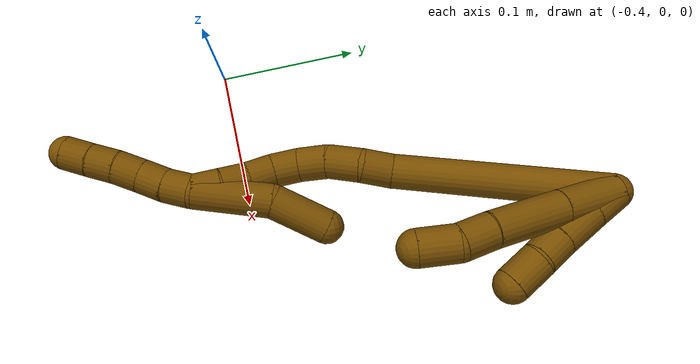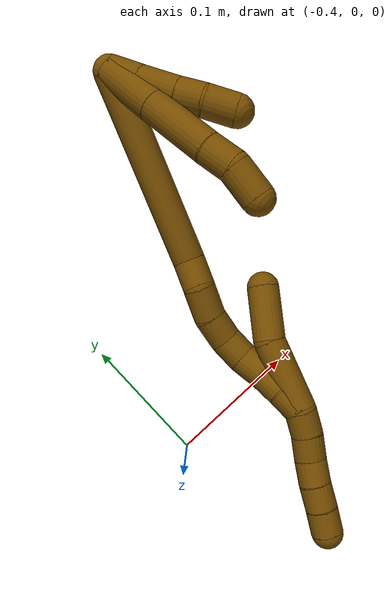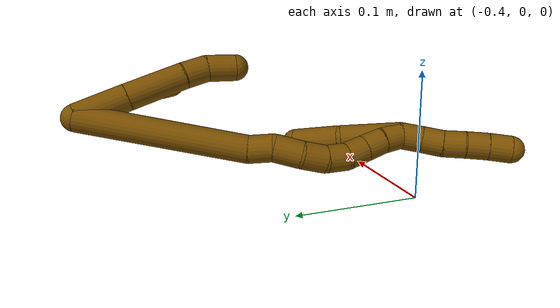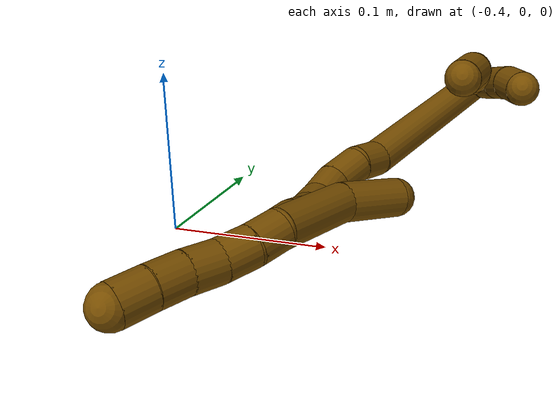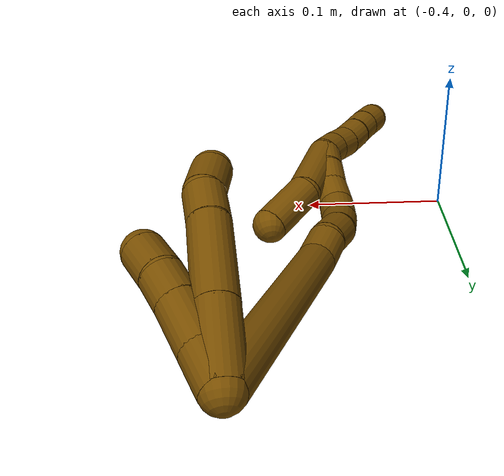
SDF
<sdf version="1.7">
 <world name="default">
  <model name="12">
   <static>0</static>
   <link name="12">
    <collision name="collision-cylinder-e_1_2_8">
     <pose>-0.001534 0.002074 -0.022785 -3.05082 -0.066956 1.27076</pose>
     <geometry><cylinder><radius>0.0125</radius><length>0.045862</length></cylinder></geometry>
     <surface>
      <friction><ode><mu>1.16</mu><mu2>1.16</mu2><slip1>0</slip1><slip2>0</slip2></ode></friction>
      <contact><ode><kp>1e+06</kp><kd>1</kd><max_vel>0</max_vel><min_depth>0.001</min_depth></ode></contact>
     </surface>
    </collision>
    <visual name="visual-cylinder-e_1_2_8">
     <pose>-0.001534 0.002074 -0.022785 -3.05082 -0.066956 1.27076</pose>
     <geometry><cylinder><radius>0.0125</radius><length>0.045862</length></cylinder></geometry>
     <material><ambient>0.466667 0.301961 0 1</ambient></material>
    </visual>
    <collision name="collision-cylinder-e_2_8_9">
     <pose>-0.004913 0.007087 -0.072365 -3.03234 -0.068311 1.117</pose>
     <geometry><cylinder><radius>0.0125</radius><length>0.054036</length></cylinder></geometry>
     <surface>
      <friction><ode><mu>1.16</mu><mu2>1.16</mu2><slip1>0</slip1><slip2>0</slip2></ode></friction>
      <contact><ode><kp>1e+06</kp><kd>1</kd><max_vel>0</max_vel><min_depth>0.001</min_depth></ode></contact>
     </surface>
    </collision>
    <visual name="visual-cylinder-e_2_8_9">
     <pose>-0.004913 0.007087 -0.072365 -3.03234 -0.068311 1.117</pose>
     <geometry><cylinder><radius>0.0125</radius><length>0.054036</length></cylinder></geometry>
     <material><ambient>0.466667 0.301961 0 1</ambient></material>
    </visual>
    <collision name="collision-cylinder-e_3_9_10">
     <pose>-0.007419 0.012306 -0.110476 -2.94283 -0.057277 0.559531</pose>
     <geometry><cylinder><radius>0.0125</radius><length>0.023124</length></cylinder></geometry>
     <surface>
      <friction><ode><mu>1.16</mu><mu2>1.16</mu2><slip1>0</slip1><slip2>0</slip2></ode></friction>
      <contact><ode><kp>1e+06</kp><kd>1</kd><max_vel>0</max_vel><min_depth>0.001</min_depth></ode></contact>
     </surface>
    </collision>
    <visual name="visual-cylinder-e_3_9_10">
     <pose>-0.007419 0.012306 -0.110476 -2.94283 -0.057277 0.559531</pose>
     <geometry><cylinder><radius>0.0125</radius><length>0.023124</length></cylinder></geometry>
     <material><ambient>0.466667 0.301961 0 1</ambient></material>
    </visual>
    <collision name="collision-cylinder-e_4_10_6">
     <pose>-0.013344 0.017721 -0.133809 -2.88634 -0.400824 2.01478</pose>
     <geometry><cylinder><radius>0.0125</radius><length>0.026977</length></cylinder></geometry>
     <surface>
      <friction><ode><mu>1.16</mu><mu2>1.16</mu2><slip1>0</slip1><slip2>0</slip2></ode></friction>
      <contact><ode><kp>1e+06</kp><kd>1</kd><max_vel>0</max_vel><min_depth>0.001</min_depth></ode></contact>
     </surface>
    </collision>
    <visual name="visual-cylinder-e_4_10_6">
     <pose>-0.013344 0.017721 -0.133809 -2.88634 -0.400824 2.01478</pose>
     <geometry><cylinder><radius>0.0125</radius><length>0.026977</length></cylinder></geometry>
     <material><ambient>0.466667 0.301961 0 1</ambient></material>
    </visual>
    <collision name="collision-cylinder-e_1_2_11">
     <pose>0.001952 0.004387 -0.011395 -2.77408 0.158537 -0.807817</pose>
     <geometry><cylinder><radius>0.0125</radius><length>0.024732</length></cylinder></geometry>
     <surface>
      <friction><ode><mu>1.16</mu><mu2>1.16</mu2><slip1>0</slip1><slip2>0</slip2></ode></friction>
      <contact><ode><kp>1e+06</kp><kd>1</kd><max_vel>0</max_vel><min_depth>0.001</min_depth></ode></contact>
     </surface>
    </collision>
    <visual name="visual-cylinder-e_1_2_11">
     <pose>0.001952 0.004387 -0.011395 -2.77408 0.158537 -0.807817</pose>
     <geometry><cylinder><radius>0.0125</radius><length>0.024732</length></cylinder></geometry>
     <material><ambient>0.466667 0.301961 0 1</ambient></material>
    </visual>
    <collision name="collision-cylinder-e_2_11_12">
     <pose>0.006784 0.013803 -0.037109 -2.80385 0.1875 -1.00797</pose>
     <geometry><cylinder><radius>0.0125</radius><length>0.030892</length></cylinder></geometry>
     <surface>
      <friction><ode><mu>1.16</mu><mu2>1.16</mu2><slip1>0</slip1><slip2>0</slip2></ode></friction>
      <contact><ode><kp>1e+06</kp><kd>1</kd><max_vel>0</max_vel><min_depth>0.001</min_depth></ode></contact>
     </surface>
    </collision>
    <visual name="visual-cylinder-e_2_11_12">
     <pose>0.006784 0.013803 -0.037109 -2.80385 0.1875 -1.00797</pose>
     <geometry><cylinder><radius>0.0125</radius><length>0.030892</length></cylinder></geometry>
     <material><ambient>0.466667 0.301961 0 1</ambient></material>
    </visual>
    <collision name="collision-cylinder-e_3_12_13">
     <pose>0.012007 0.022406 -0.06072 -2.77437 0.231207 -1.11764</pose>
     <geometry><cylinder><radius>0.0125</radius><length>0.020457</length></cylinder></geometry>
     <surface>
      <friction><ode><mu>1.16</mu><mu2>1.16</mu2><slip1>0</slip1><slip2>0</slip2></ode></friction>
      <contact><ode><kp>1e+06</kp><kd>1</kd><max_vel>0</max_vel><min_depth>0.001</min_depth></ode></contact>
     </surface>
    </collision>
    <visual name="visual-cylinder-e_3_12_13">
     <pose>0.012007 0.022406 -0.06072 -2.77437 0.231207 -1.11764</pose>
     <geometry><cylinder><radius>0.0125</radius><length>0.020457</length></cylinder></geometry>
     <material><ambient>0.466667 0.301961 0 1</ambient></material>
    </visual>
    <collision name="collision-cylinder-e_4_13_5">
     <pose>0.016042 0.032039 -0.080184 -2.6044 0.141897 -0.50535</pose>
     <geometry><cylinder><radius>0.0125</radius><length>0.023918</length></cylinder></geometry>
     <surface>
      <friction><ode><mu>1.16</mu><mu2>1.16</mu2><slip1>0</slip1><slip2>0</slip2></ode></friction>
      <contact><ode><kp>1e+06</kp><kd>1</kd><max_vel>0</max_vel><min_depth>0.001</min_depth></ode></contact>
     </surface>
    </collision>
    <visual name="visual-cylinder-e_4_13_5">
     <pose>0.016042 0.032039 -0.080184 -2.6044 0.141897 -0.50535</pose>
     <geometry><cylinder><radius>0.0125</radius><length>0.023918</length></cylinder></geometry>
     <material><ambient>0.466667 0.301961 0 1</ambient></material>
    </visual>
    <collision name="collision-cylinder-e_1_2_14">
     <pose>-0.049113 0.016055 -0.054666 -2.85593 -0.711422 2.40294</pose>
     <geometry><cylinder><radius>0.0125</radius><length>0.150443</length></cylinder></geometry>
     <surface>
      <friction><ode><mu>1.16</mu><mu2>1.16</mu2><slip1>0</slip1><slip2>0</slip2></ode></friction>
      <contact><ode><kp>1e+06</kp><kd>1</kd><max_vel>0</max_vel><min_depth>0.001</min_depth></ode></contact>
     </surface>
    </collision>
    <visual name="visual-cylinder-e_1_2_14">
     <pose>-0.049113 0.016055 -0.054666 -2.85593 -0.711422 2.40294</pose>
     <geometry><cylinder><radius>0.0125</radius><length>0.150443</length></cylinder></geometry>
     <material><ambient>0.466667 0.301961 0 1</ambient></material>
    </visual>
    <collision name="collision-cylinder-e_2_14_15">
     <pose>-0.104347 0.032 -0.118563 3.12968 -0.585519 -3.10206</pose>
     <geometry><cylinder><radius>0.0125</radius><length>0.022152</length></cylinder></geometry>
     <surface>
      <friction><ode><mu>1.16</mu><mu2>1.16</mu2><slip1>0</slip1><slip2>0</slip2></ode></friction>
      <contact><ode><kp>1e+06</kp><kd>1</kd><max_vel>0</max_vel><min_depth>0.001</min_depth></ode></contact>
     </surface>
    </collision>
    <visual name="visual-cylinder-e_2_14_15">
     <pose>-0.104347 0.032 -0.118563 3.12968 -0.585519 -3.10206</pose>
     <geometry><cylinder><radius>0.0125</radius><length>0.022152</length></cylinder></geometry>
     <material><ambient>0.466667 0.301961 0 1</ambient></material>
    </visual>
    <collision name="collision-cylinder-e_3_15_16">
     <pose>-0.119359 0.034775 -0.136365 -2.81696 -0.776882 2.38032</pose>
     <geometry><cylinder><radius>0.0125</radius><length>0.025365</length></cylinder></geometry>
     <surface>
      <friction><ode><mu>1.16</mu><mu2>1.16</mu2><slip1>0</slip1><slip2>0</slip2></ode></friction>
      <contact><ode><kp>1e+06</kp><kd>1</kd><max_vel>0</max_vel><min_depth>0.001</min_depth></ode></contact>
     </surface>
    </collision>
    <visual name="visual-cylinder-e_3_15_16">
     <pose>-0.119359 0.034775 -0.136365 -2.81696 -0.776882 2.38032</pose>
     <geometry><cylinder><radius>0.0125</radius><length>0.025365</length></cylinder></geometry>
     <material><ambient>0.466667 0.301961 0 1</ambient></material>
    </visual>
    <collision name="collision-cylinder-e_4_16_17">
     <pose>-0.134137 0.041845 -0.153242 -2.67479 -0.564346 1.76792</pose>
     <geometry><cylinder><radius>0.0125</radius><length>0.022014</length></cylinder></geometry>
     <surface>
      <friction><ode><mu>1.16</mu><mu2>1.16</mu2><slip1>0</slip1><slip2>0</slip2></ode></friction>
      <contact><ode><kp>1e+06</kp><kd>1</kd><max_vel>0</max_vel><min_depth>0.001</min_depth></ode></contact>
     </surface>
    </collision>
    <visual name="visual-cylinder-e_4_16_17">
     <pose>-0.134137 0.041845 -0.153242 -2.67479 -0.564346 1.76792</pose>
     <geometry><cylinder><radius>0.0125</radius><length>0.022014</length></cylinder></geometry>
     <material><ambient>0.466667 0.301961 0 1</ambient></material>
    </visual>
    <collision name="collision-cylinder-e_5_17_18">
     <pose>-0.14301 0.04892 -0.17065 -2.83417 -0.302957 1.55592</pose>
     <geometry><cylinder><radius>0.0125</radius><length>0.020013</length></cylinder></geometry>
     <surface>
      <friction><ode><mu>1.16</mu><mu2>1.16</mu2><slip1>0</slip1><slip2>0</slip2></ode></friction>
      <contact><ode><kp>1e+06</kp><kd>1</kd><max_vel>0</max_vel><min_depth>0.001</min_depth></ode></contact>
     </surface>
    </collision>
    <visual name="visual-cylinder-e_5_17_18">
     <pose>-0.14301 0.04892 -0.17065 -2.83417 -0.302957 1.55592</pose>
     <geometry><cylinder><radius>0.0125</radius><length>0.020013</length></cylinder></geometry>
     <material><ambient>0.466667 0.301961 0 1</ambient></material>
    </visual>
    <collision name="collision-cylinder-e_6_18_19">
     <pose>-0.146566 0.053752 -0.189546 -2.94585 -0.057059 0.565725</pose>
     <geometry><cylinder><radius>0.0125</radius><length>0.02</length></cylinder></geometry>
     <surface>
      <friction><ode><mu>1.16</mu><mu2>1.16</mu2><slip1>0</slip1><slip2>0</slip2></ode></friction>
      <contact><ode><kp>1e+06</kp><kd>1</kd><max_vel>0</max_vel><min_depth>0.001</min_depth></ode></contact>
     </surface>
    </collision>
    <visual name="visual-cylinder-e_6_18_19">
     <pose>-0.146566 0.053752 -0.189546 -2.94585 -0.057059 0.565725</pose>
     <geometry><cylinder><radius>0.0125</radius><length>0.02</length></cylinder></geometry>
     <material><ambient>0.466667 0.301961 0 1</ambient></material>
    </visual>
    <collision name="collision-cylinder-e_7_19_20">
     <pose>-0.148143 0.056695 -0.209239 -3.0408 -0.100855 1.57143</pose>
     <geometry><cylinder><radius>0.0125</radius><length>0.020001</length></cylinder></geometry>
     <surface>
      <friction><ode><mu>1.16</mu><mu2>1.16</mu2><slip1>0</slip1><slip2>0</slip2></ode></friction>
      <contact><ode><kp>1e+06</kp><kd>1</kd><max_vel>0</max_vel><min_depth>0.001</min_depth></ode></contact>
     </surface>
    </collision>
    <visual name="visual-cylinder-e_7_19_20">
     <pose>-0.148143 0.056695 -0.209239 -3.0408 -0.100855 1.57143</pose>
     <geometry><cylinder><radius>0.0125</radius><length>0.020001</length></cylinder></geometry>
     <material><ambient>0.466667 0.301961 0 1</ambient></material>
    </visual>
    <collision name="collision-cylinder-e_8_20_1">
     <pose>-0.151201 0.059628 -0.228739 -2.94301 -0.206449 1.60991</pose>
     <geometry><cylinder><radius>0.0125</radius><length>0.020012</length></cylinder></geometry>
     <surface>
      <friction><ode><mu>1.16</mu><mu2>1.16</mu2><slip1>0</slip1><slip2>0</slip2></ode></friction>
      <contact><ode><kp>1e+06</kp><kd>1</kd><max_vel>0</max_vel><min_depth>0.001</min_depth></ode></contact>
     </surface>
    </collision>
    <visual name="visual-cylinder-e_8_20_1">
     <pose>-0.151201 0.059628 -0.228739 -2.94301 -0.206449 1.60991</pose>
     <geometry><cylinder><radius>0.0125</radius><length>0.020012</length></cylinder></geometry>
     <material><ambient>0.466667 0.301961 0 1</ambient></material>
    </visual>
    <collision name="collision-cylinder-e_1_1_21">
     <pose>-0.138166 0.060211 -0.214115 0.055631 0.556277 0.015889</pose>
     <geometry><cylinder><radius>0.0125</radius><length>0.05714</length></cylinder></geometry>
     <surface>
      <friction><ode><mu>1.16</mu><mu2>1.16</mu2><slip1>0</slip1><slip2>0</slip2></ode></friction>
      <contact><ode><kp>1e+06</kp><kd>1</kd><max_vel>0</max_vel><min_depth>0.001</min_depth></ode></contact>
     </surface>
    </collision>
    <visual name="visual-cylinder-e_1_1_21">
     <pose>-0.138166 0.060211 -0.214115 0.055631 0.556277 0.015889</pose>
     <geometry><cylinder><radius>0.0125</radius><length>0.05714</length></cylinder></geometry>
     <material><ambient>0.466667 0.301961 0 1</ambient></material>
    </visual>
    <collision name="collision-cylinder-e_2_21_4">
     <pose>-0.109264 0.063898 -0.174302 -0.312456 0.700677 -0.114986</pose>
     <geometry><cylinder><radius>0.0125</radius><length>0.04286</length></cylinder></geometry>
     <surface>
      <friction><ode><mu>1.16</mu><mu2>1.16</mu2><slip1>0</slip1><slip2>0</slip2></ode></friction>
      <contact><ode><kp>1e+06</kp><kd>1</kd><max_vel>0</max_vel><min_depth>0.001</min_depth></ode></contact>
     </surface>
    </collision>
    <visual name="visual-cylinder-e_2_21_4">
     <pose>-0.109264 0.063898 -0.174302 -0.312456 0.700677 -0.114986</pose>
     <geometry><cylinder><radius>0.0125</radius><length>0.04286</length></cylinder></geometry>
     <material><ambient>0.466667 0.301961 0 1</ambient></material>
    </visual>
    <collision name="collision-cylinder-e_1_1_22">
     <pose>-0.16037 0.062775 -0.245258 -2.96779 -0.792092 2.73077</pose>
     <geometry><cylinder><radius>0.0125</radius><length>0.02</length></cylinder></geometry>
     <surface>
      <friction><ode><mu>1.16</mu><mu2>1.16</mu2><slip1>0</slip1><slip2>0</slip2></ode></friction>
      <contact><ode><kp>1e+06</kp><kd>1</kd><max_vel>0</max_vel><min_depth>0.001</min_depth></ode></contact>
     </surface>
    </collision>
    <visual name="visual-cylinder-e_1_1_22">
     <pose>-0.16037 0.062775 -0.245258 -2.96779 -0.792092 2.73077</pose>
     <geometry><cylinder><radius>0.0125</radius><length>0.02</length></cylinder></geometry>
     <material><ambient>0.466667 0.301961 0 1</ambient></material>
    </visual>
    <collision name="collision-cylinder-e_2_22_23">
     <pose>-0.175219 0.064224 -0.258514 -3.10466 -0.883738 3.06356</pose>
     <geometry><cylinder><radius>0.0125</radius><length>0.02</length></cylinder></geometry>
     <surface>
      <friction><ode><mu>1.16</mu><mu2>1.16</mu2><slip1>0</slip1><slip2>0</slip2></ode></friction>
      <contact><ode><kp>1e+06</kp><kd>1</kd><max_vel>0</max_vel><min_depth>0.001</min_depth></ode></contact>
     </surface>
    </collision>
    <visual name="visual-cylinder-e_2_22_23">
     <pose>-0.175219 0.064224 -0.258514 -3.10466 -0.883738 3.06356</pose>
     <geometry><cylinder><radius>0.0125</radius><length>0.02</length></cylinder></geometry>
     <material><ambient>0.466667 0.301961 0 1</ambient></material>
    </visual>
    <collision name="collision-cylinder-e_3_23_24">
     <pose>-0.18987 0.063747 -0.272037 3.04291 -0.764122 -2.89703</pose>
     <geometry><cylinder><radius>0.0125</radius><length>0.02</length></cylinder></geometry>
     <surface>
      <friction><ode><mu>1.16</mu><mu2>1.16</mu2><slip1>0</slip1><slip2>0</slip2></ode></friction>
      <contact><ode><kp>1e+06</kp><kd>1</kd><max_vel>0</max_vel><min_depth>0.001</min_depth></ode></contact>
     </surface>
    </collision>
    <visual name="visual-cylinder-e_3_23_24">
     <pose>-0.18987 0.063747 -0.272037 3.04291 -0.764122 -2.89703</pose>
     <geometry><cylinder><radius>0.0125</radius><length>0.02</length></cylinder></geometry>
     <material><ambient>0.466667 0.301961 0 1</ambient></material>
    </visual>
    <collision name="collision-cylinder-e_4_24_25">
     <pose>-0.203491 0.06321 -0.286641 -3.11807 -0.734518 3.08047</pose>
     <geometry><cylinder><radius>0.0125</radius><length>0.02</length></cylinder></geometry>
     <surface>
      <friction><ode><mu>1.16</mu><mu2>1.16</mu2><slip1>0</slip1><slip2>0</slip2></ode></friction>
      <contact><ode><kp>1e+06</kp><kd>1</kd><max_vel>0</max_vel><min_depth>0.001</min_depth></ode></contact>
     </surface>
    </collision>
    <visual name="visual-cylinder-e_4_24_25">
     <pose>-0.203491 0.06321 -0.286641 -3.11807 -0.734518 3.08047</pose>
     <geometry><cylinder><radius>0.0125</radius><length>0.02</length></cylinder></geometry>
     <material><ambient>0.466667 0.301961 0 1</ambient></material>
    </visual>
    <collision name="collision-cylinder-e_5_25_3">
     <pose>-0.217276 0.063778 -0.301109 -3.08581 -0.78708 3.00741</pose>
     <geometry><cylinder><radius>0.0125</radius><length>0.02</length></cylinder></geometry>
     <surface>
      <friction><ode><mu>1.16</mu><mu2>1.16</mu2><slip1>0</slip1><slip2>0</slip2></ode></friction>
      <contact><ode><kp>1e+06</kp><kd>1</kd><max_vel>0</max_vel><min_depth>0.001</min_depth></ode></contact>
     </surface>
    </collision>
    <visual name="visual-cylinder-e_5_25_3">
     <pose>-0.217276 0.063778 -0.301109 -3.08581 -0.78708 3.00741</pose>
     <geometry><cylinder><radius>0.0125</radius><length>0.02</length></cylinder></geometry>
     <material><ambient>0.466667 0.301961 0 1</ambient></material>
    </visual>
    <collision name="collision-sphere-3">
     <pose>-0.224359 0.064172 -0.308157 0 -0 0</pose>
     <geometry><sphere><radius>0.0125</radius></sphere></geometry>
     <surface>
      <friction><ode><mu>1.16</mu><mu2>1.16</mu2><slip1>0</slip1><slip2>0</slip2></ode></friction>
      <contact><ode><kp>1e+06</kp><kd>1</kd><max_vel>0</max_vel><min_depth>0.001</min_depth></ode></contact>
     </surface>
    </collision>
    <visual name="visual-sphere-3">
     <pose>-0.224359 0.064172 -0.308157 0 -0 0</pose>
     <geometry><sphere><radius>0.0125</radius></sphere></geometry>
     <material><ambient>0.466667 0.301961 0 1</ambient></material>
    </visual>
    <collision name="collision-sphere-25">
     <pose>-0.210193 0.063384 -0.294061 0 -0 0</pose>
     <geometry><sphere><radius>0.0125</radius></sphere></geometry>
     <surface>
      <friction><ode><mu>1.16</mu><mu2>1.16</mu2><slip1>0</slip1><slip2>0</slip2></ode></friction>
      <contact><ode><kp>1e+06</kp><kd>1</kd><max_vel>0</max_vel><min_depth>0.001</min_depth></ode></contact>
     </surface>
    </collision>
    <visual name="visual-sphere-25">
     <pose>-0.210193 0.063384 -0.294061 0 -0 0</pose>
     <geometry><sphere><radius>0.0125</radius></sphere></geometry>
     <material><ambient>0.466667 0.301961 0 1</ambient></material>
    </visual>
    <collision name="collision-sphere-24">
     <pose>-0.196789 0.063035 -0.279222 0 -0 0</pose>
     <geometry><sphere><radius>0.0125</radius></sphere></geometry>
     <surface>
      <friction><ode><mu>1.16</mu><mu2>1.16</mu2><slip1>0</slip1><slip2>0</slip2></ode></friction>
      <contact><ode><kp>1e+06</kp><kd>1</kd><max_vel>0</max_vel><min_depth>0.001</min_depth></ode></contact>
     </surface>
    </collision>
    <visual name="visual-sphere-24">
     <pose>-0.196789 0.063035 -0.279222 0 -0 0</pose>
     <geometry><sphere><radius>0.0125</radius></sphere></geometry>
     <material><ambient>0.466667 0.301961 0 1</ambient></material>
    </visual>
    <collision name="collision-sphere-23">
     <pose>-0.182951 0.064458 -0.264852 0 -0 0</pose>
     <geometry><sphere><radius>0.0125</radius></sphere></geometry>
     <surface>
      <friction><ode><mu>1.16</mu><mu2>1.16</mu2><slip1>0</slip1><slip2>0</slip2></ode></friction>
      <contact><ode><kp>1e+06</kp><kd>1</kd><max_vel>0</max_vel><min_depth>0.001</min_depth></ode></contact>
     </surface>
    </collision>
    <visual name="visual-sphere-23">
     <pose>-0.182951 0.064458 -0.264852 0 -0 0</pose>
     <geometry><sphere><radius>0.0125</radius></sphere></geometry>
     <material><ambient>0.466667 0.301961 0 1</ambient></material>
    </visual>
    <collision name="collision-sphere-22">
     <pose>-0.167488 0.06399 -0.252176 0 -0 0</pose>
     <geometry><sphere><radius>0.0125</radius></sphere></geometry>
     <surface>
      <friction><ode><mu>1.16</mu><mu2>1.16</mu2><slip1>0</slip1><slip2>0</slip2></ode></friction>
      <contact><ode><kp>1e+06</kp><kd>1</kd><max_vel>0</max_vel><min_depth>0.001</min_depth></ode></contact>
     </surface>
    </collision>
    <visual name="visual-sphere-22">
     <pose>-0.167488 0.06399 -0.252176 0 -0 0</pose>
     <geometry><sphere><radius>0.0125</radius></sphere></geometry>
     <material><ambient>0.466667 0.301961 0 1</ambient></material>
    </visual>
    <collision name="collision-sphere-4">
     <pose>-0.095447 0.068933 -0.158714 0 -0 0</pose>
     <geometry><sphere><radius>0.0125</radius></sphere></geometry>
     <surface>
      <friction><ode><mu>1.16</mu><mu2>1.16</mu2><slip1>0</slip1><slip2>0</slip2></ode></friction>
      <contact><ode><kp>1e+06</kp><kd>1</kd><max_vel>0</max_vel><min_depth>0.001</min_depth></ode></contact>
     </surface>
    </collision>
    <visual name="visual-sphere-4">
     <pose>-0.095447 0.068933 -0.158714 0 -0 0</pose>
     <geometry><sphere><radius>0.0125</radius></sphere></geometry>
     <material><ambient>0.466667 0.301961 0 1</ambient></material>
    </visual>
    <collision name="collision-sphere-21">
     <pose>-0.12308 0.058862 -0.18989 0 -0 0</pose>
     <geometry><sphere><radius>0.0125</radius></sphere></geometry>
     <surface>
      <friction><ode><mu>1.16</mu><mu2>1.16</mu2><slip1>0</slip1><slip2>0</slip2></ode></friction>
      <contact><ode><kp>1e+06</kp><kd>1</kd><max_vel>0</max_vel><min_depth>0.001</min_depth></ode></contact>
     </surface>
    </collision>
    <visual name="visual-sphere-21">
     <pose>-0.12308 0.058862 -0.18989 0 -0 0</pose>
     <geometry><sphere><radius>0.0125</radius></sphere></geometry>
     <material><ambient>0.466667 0.301961 0 1</ambient></material>
    </visual>
    <collision name="collision-sphere-1">
     <pose>-0.153252 0.06156 -0.23834 0 -0 0</pose>
     <geometry><sphere><radius>0.0125</radius></sphere></geometry>
     <surface>
      <friction><ode><mu>1.16</mu><mu2>1.16</mu2><slip1>0</slip1><slip2>0</slip2></ode></friction>
      <contact><ode><kp>1e+06</kp><kd>1</kd><max_vel>0</max_vel><min_depth>0.001</min_depth></ode></contact>
     </surface>
    </collision>
    <visual name="visual-sphere-1">
     <pose>-0.153252 0.06156 -0.23834 0 -0 0</pose>
     <geometry><sphere><radius>0.0125</radius></sphere></geometry>
     <material><ambient>0.466667 0.301961 0 1</ambient></material>
    </visual>
    <collision name="collision-sphere-11">
     <pose>0.003905 0.008775 -0.022791 0 -0 0</pose>
     <geometry><sphere><radius>0.0125</radius></sphere></geometry>
     <surface>
      <friction><ode><mu>1.16</mu><mu2>1.16</mu2><slip1>0</slip1><slip2>0</slip2></ode></friction>
      <contact><ode><kp>1e+06</kp><kd>1</kd><max_vel>0</max_vel><min_depth>0.001</min_depth></ode></contact>
     </surface>
    </collision>
    <visual name="visual-sphere-11">
     <pose>0.003905 0.008775 -0.022791 0 -0 0</pose>
     <geometry><sphere><radius>0.0125</radius></sphere></geometry>
     <material><ambient>0.466667 0.301961 0 1</ambient></material>
    </visual>
    <collision name="collision-sphere-6">
     <pose>-0.018607 0.020856 -0.145826 0 -0 0</pose>
     <geometry><sphere><radius>0.0125</radius></sphere></geometry>
     <surface>
      <friction><ode><mu>1.16</mu><mu2>1.16</mu2><slip1>0</slip1><slip2>0</slip2></ode></friction>
      <contact><ode><kp>1e+06</kp><kd>1</kd><max_vel>0</max_vel><min_depth>0.001</min_depth></ode></contact>
     </surface>
    </collision>
    <visual name="visual-sphere-6">
     <pose>-0.018607 0.020856 -0.145826 0 -0 0</pose>
     <geometry><sphere><radius>0.0125</radius></sphere></geometry>
     <material><ambient>0.466667 0.301961 0 1</ambient></material>
    </visual>
    <collision name="collision-sphere-10">
     <pose>-0.008081 0.014585 -0.121792 0 -0 0</pose>
     <geometry><sphere><radius>0.0125</radius></sphere></geometry>
     <surface>
      <friction><ode><mu>1.16</mu><mu2>1.16</mu2><slip1>0</slip1><slip2>0</slip2></ode></friction>
      <contact><ode><kp>1e+06</kp><kd>1</kd><max_vel>0</max_vel><min_depth>0.001</min_depth></ode></contact>
     </surface>
    </collision>
    <visual name="visual-sphere-10">
     <pose>-0.008081 0.014585 -0.121792 0 -0 0</pose>
     <geometry><sphere><radius>0.0125</radius></sphere></geometry>
     <material><ambient>0.466667 0.301961 0 1</ambient></material>
    </visual>
    <collision name="collision-sphere-9">
     <pose>-0.006757 0.010026 -0.09916 0 -0 0</pose>
     <geometry><sphere><radius>0.0125</radius></sphere></geometry>
     <surface>
      <friction><ode><mu>1.16</mu><mu2>1.16</mu2><slip1>0</slip1><slip2>0</slip2></ode></friction>
      <contact><ode><kp>1e+06</kp><kd>1</kd><max_vel>0</max_vel><min_depth>0.001</min_depth></ode></contact>
     </surface>
    </collision>
    <visual name="visual-sphere-9">
     <pose>-0.006757 0.010026 -0.09916 0 -0 0</pose>
     <geometry><sphere><radius>0.0125</radius></sphere></geometry>
     <material><ambient>0.466667 0.301961 0 1</ambient></material>
    </visual>
    <collision name="collision-sphere-2">
     <geometry><sphere><radius>0.0125</radius></sphere></geometry>
     <surface>
      <friction><ode><mu>1.16</mu><mu2>1.16</mu2><slip1>0</slip1><slip2>0</slip2></ode></friction>
      <contact><ode><kp>1e+06</kp><kd>1</kd><max_vel>0</max_vel><min_depth>0.001</min_depth></ode></contact>
     </surface>
    </collision>
    <visual name="visual-sphere-2">
     <geometry><sphere><radius>0.0125</radius></sphere></geometry>
     <material><ambient>0.466667 0.301961 0 1</ambient></material>
    </visual>
    <collision name="collision-sphere-19">
     <pose>-0.147136 0.055694 -0.19934 0 -0 0</pose>
     <geometry><sphere><radius>0.0125</radius></sphere></geometry>
     <surface>
      <friction><ode><mu>1.16</mu><mu2>1.16</mu2><slip1>0</slip1><slip2>0</slip2></ode></friction>
      <contact><ode><kp>1e+06</kp><kd>1</kd><max_vel>0</max_vel><min_depth>0.001</min_depth></ode></contact>
     </surface>
    </collision>
    <visual name="visual-sphere-19">
     <pose>-0.147136 0.055694 -0.19934 0 -0 0</pose>
     <geometry><sphere><radius>0.0125</radius></sphere></geometry>
     <material><ambient>0.466667 0.301961 0 1</ambient></material>
    </visual>
    <collision name="collision-sphere-8">
     <pose>-0.003068 0.004148 -0.045571 0 -0 0</pose>
     <geometry><sphere><radius>0.0125</radius></sphere></geometry>
     <surface>
      <friction><ode><mu>1.16</mu><mu2>1.16</mu2><slip1>0</slip1><slip2>0</slip2></ode></friction>
      <contact><ode><kp>1e+06</kp><kd>1</kd><max_vel>0</max_vel><min_depth>0.001</min_depth></ode></contact>
     </surface>
    </collision>
    <visual name="visual-sphere-8">
     <pose>-0.003068 0.004148 -0.045571 0 -0 0</pose>
     <geometry><sphere><radius>0.0125</radius></sphere></geometry>
     <material><ambient>0.466667 0.301961 0 1</ambient></material>
    </visual>
    <collision name="collision-sphere-12">
     <pose>0.009663 0.018832 -0.051427 0 -0 0</pose>
     <geometry><sphere><radius>0.0125</radius></sphere></geometry>
     <surface>
      <friction><ode><mu>1.16</mu><mu2>1.16</mu2><slip1>0</slip1><slip2>0</slip2></ode></friction>
      <contact><ode><kp>1e+06</kp><kd>1</kd><max_vel>0</max_vel><min_depth>0.001</min_depth></ode></contact>
     </surface>
    </collision>
    <visual name="visual-sphere-12">
     <pose>0.009663 0.018832 -0.051427 0 -0 0</pose>
     <geometry><sphere><radius>0.0125</radius></sphere></geometry>
     <material><ambient>0.466667 0.301961 0 1</ambient></material>
    </visual>
    <collision name="collision-sphere-13">
     <pose>0.014351 0.025981 -0.070013 0 -0 0</pose>
     <geometry><sphere><radius>0.0125</radius></sphere></geometry>
     <surface>
      <friction><ode><mu>1.16</mu><mu2>1.16</mu2><slip1>0</slip1><slip2>0</slip2></ode></friction>
      <contact><ode><kp>1e+06</kp><kd>1</kd><max_vel>0</max_vel><min_depth>0.001</min_depth></ode></contact>
     </surface>
    </collision>
    <visual name="visual-sphere-13">
     <pose>0.014351 0.025981 -0.070013 0 -0 0</pose>
     <geometry><sphere><radius>0.0125</radius></sphere></geometry>
     <material><ambient>0.466667 0.301961 0 1</ambient></material>
    </visual>
    <collision name="collision-sphere-5">
     <pose>0.017733 0.038098 -0.090355 0 -0 0</pose>
     <geometry><sphere><radius>0.0125</radius></sphere></geometry>
     <surface>
      <friction><ode><mu>1.16</mu><mu2>1.16</mu2><slip1>0</slip1><slip2>0</slip2></ode></friction>
      <contact><ode><kp>1e+06</kp><kd>1</kd><max_vel>0</max_vel><min_depth>0.001</min_depth></ode></contact>
     </surface>
    </collision>
    <visual name="visual-sphere-5">
     <pose>0.017733 0.038098 -0.090355 0 -0 0</pose>
     <geometry><sphere><radius>0.0125</radius></sphere></geometry>
     <material><ambient>0.466667 0.301961 0 1</ambient></material>
    </visual>
    <collision name="collision-sphere-14">
     <pose>-0.098226 0.03211 -0.109333 0 -0 0</pose>
     <geometry><sphere><radius>0.0125</radius></sphere></geometry>
     <surface>
      <friction><ode><mu>1.16</mu><mu2>1.16</mu2><slip1>0</slip1><slip2>0</slip2></ode></friction>
      <contact><ode><kp>1e+06</kp><kd>1</kd><max_vel>0</max_vel><min_depth>0.001</min_depth></ode></contact>
     </surface>
    </collision>
    <visual name="visual-sphere-14">
     <pose>-0.098226 0.03211 -0.109333 0 -0 0</pose>
     <geometry><sphere><radius>0.0125</radius></sphere></geometry>
     <material><ambient>0.466667 0.301961 0 1</ambient></material>
    </visual>
    <collision name="collision-sphere-15">
     <pose>-0.110468 0.03189 -0.127794 0 -0 0</pose>
     <geometry><sphere><radius>0.0125</radius></sphere></geometry>
     <surface>
      <friction><ode><mu>1.16</mu><mu2>1.16</mu2><slip1>0</slip1><slip2>0</slip2></ode></friction>
      <contact><ode><kp>1e+06</kp><kd>1</kd><max_vel>0</max_vel><min_depth>0.001</min_depth></ode></contact>
     </surface>
    </collision>
    <visual name="visual-sphere-15">
     <pose>-0.110468 0.03189 -0.127794 0 -0 0</pose>
     <geometry><sphere><radius>0.0125</radius></sphere></geometry>
     <material><ambient>0.466667 0.301961 0 1</ambient></material>
    </visual>
    <collision name="collision-sphere-16">
     <pose>-0.12825 0.037659 -0.144937 0 -0 0</pose>
     <geometry><sphere><radius>0.0125</radius></sphere></geometry>
     <surface>
      <friction><ode><mu>1.16</mu><mu2>1.16</mu2><slip1>0</slip1><slip2>0</slip2></ode></friction>
      <contact><ode><kp>1e+06</kp><kd>1</kd><max_vel>0</max_vel><min_depth>0.001</min_depth></ode></contact>
     </surface>
    </collision>
    <visual name="visual-sphere-16">
     <pose>-0.12825 0.037659 -0.144937 0 -0 0</pose>
     <geometry><sphere><radius>0.0125</radius></sphere></geometry>
     <material><ambient>0.466667 0.301961 0 1</ambient></material>
    </visual>
    <collision name="collision-sphere-17">
     <pose>-0.140025 0.04603 -0.161547 0 -0 0</pose>
     <geometry><sphere><radius>0.0125</radius></sphere></geometry>
     <surface>
      <friction><ode><mu>1.16</mu><mu2>1.16</mu2><slip1>0</slip1><slip2>0</slip2></ode></friction>
      <contact><ode><kp>1e+06</kp><kd>1</kd><max_vel>0</max_vel><min_depth>0.001</min_depth></ode></contact>
     </surface>
    </collision>
    <visual name="visual-sphere-17">
     <pose>-0.140025 0.04603 -0.161547 0 -0 0</pose>
     <geometry><sphere><radius>0.0125</radius></sphere></geometry>
     <material><ambient>0.466667 0.301961 0 1</ambient></material>
    </visual>
    <collision name="collision-sphere-18">
     <pose>-0.145995 0.051811 -0.179753 0 -0 0</pose>
     <geometry><sphere><radius>0.0125</radius></sphere></geometry>
     <surface>
      <friction><ode><mu>1.16</mu><mu2>1.16</mu2><slip1>0</slip1><slip2>0</slip2></ode></friction>
      <contact><ode><kp>1e+06</kp><kd>1</kd><max_vel>0</max_vel><min_depth>0.001</min_depth></ode></contact>
     </surface>
    </collision>
    <visual name="visual-sphere-18">
     <pose>-0.145995 0.051811 -0.179753 0 -0 0</pose>
     <geometry><sphere><radius>0.0125</radius></sphere></geometry>
     <material><ambient>0.466667 0.301961 0 1</ambient></material>
    </visual>
    <collision name="collision-sphere-20">
     <pose>-0.14915 0.057696 -0.219138 0 -0 0</pose>
     <geometry><sphere><radius>0.0125</radius></sphere></geometry>
     <surface>
      <friction><ode><mu>1.16</mu><mu2>1.16</mu2><slip1>0</slip1><slip2>0</slip2></ode></friction>
      <contact><ode><kp>1e+06</kp><kd>1</kd><max_vel>0</max_vel><min_depth>0.001</min_depth></ode></contact>
     </surface>
    </collision>
    <visual name="visual-sphere-20">
     <pose>-0.14915 0.057696 -0.219138 0 -0 0</pose>
     <geometry><sphere><radius>0.0125</radius></sphere></geometry>
     <material><ambient>0.466667 0.301961 0 1</ambient></material>
    </visual>
    <inertial>
     <pose>-0.078594 0.033124 -0.128448 0 -0 0</pose>
     <mass>0.75</mass>
     <inertia><ixx>3e-05</ixx><ixy>0</ixy><ixz>0</ixz><iyy>0.000448</iyy><iyz>0</iyz><izz>7.6e-05</izz></inertia>
    </inertial>
   </link>
   <pose>-0.247526 0.245175 0.051071 -2.06541 -0.524181 0.36493</pose>
  </model>
 </world>
</sdf>
